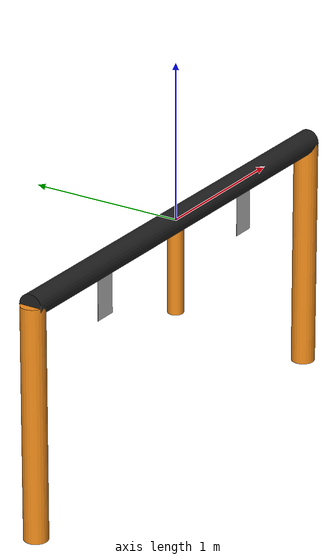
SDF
<?xml version='1.0'?>
<sdf version='1.5'>
  <model name='start_gate'>
    <pose> 0 0 0 0 0 0</pose>
    <self_collide> 0 </self_collide>
    <static>1</static>

    <link name='gate_top'>
      <pose> 0 0 0 0 1.5707 0</pose>
      <visual name='gate_top_vis'>
        <geometry>
          <cylinder>
            <radius>0.0762</radius>
            <length>3.05</length>
          </cylinder>
        </geometry>
        <material>
          <script>
            <uri>file://media/materials/scripts/gazebo.material</uri>
            <name>Gazebo/Black</name>
          </script>
        </material>
      </visual>
      <collision name='gate_top_collide'>
        <geometry>
          <cylinder>
            <radius>0.0762</radius>
            <length>3.05</length>
          </cylinder>
        </geometry>
      </collision>
    </link>

    <link name='gate_left'>
      <pose>-1.5 0 -0.75 0 0 0</pose>
      <visual name='gate_left_top'>
        <geometry>
          <cylinder>
            <radius>0.0762</radius>
            <length>1.5</length>
          </cylinder>
        </geometry>
        <material>
          <script>
            <uri>file://media/materials/scripts/gazebo.material</uri>
            <name>Gazebo/Orange</name>
          </script>
        </material>
      </visual>
      <collision name='gate_left_collide'>
        <geometry>
          <cylinder>
            <radius>0.0762</radius>
            <length>1.5</length>
          </cylinder>
        </geometry>
      </collision>
    </link>

    <link name='gate_right'>
      <pose>1.5 0 -0.75 0 0 0</pose>
      <visual name='gate_right_top'>
        <geometry>
          <cylinder>
            <radius>0.0762</radius>
            <length>1.5</length>
          </cylinder>
        </geometry>
        <material>
          <script>
            <uri>file://media/materials/scripts/gazebo.material</uri>
            <name>Gazebo/Orange</name>
          </script>
        </material>
      </visual>
      <collision name='gate_right_collide'>
        <geometry>
          <cylinder>
            <radius>0.0762</radius>
            <length>1.5</length>
          </cylinder>
        </geometry>
      </collision>
    </link>

    <link name='Bootlegger_red_flag_left'>
      <pose>0.762 0 -0.2 0 0 0</pose>
      <visual name='red_flag_left_vis'>
        <geometry>
          <box>
            <size>0.152 0.001 0.305</size>
          </box>
        </geometry>
        <material>
          <script>
            <uri>model://gate/materials/scripts</uri>
            <uri>model://gate/materials/textures</uri>
            <name>Bootlegger</name>
          </script>
        </material>
      </visual>
    </link>

    <link name='Gman_black_flag_right'>
      <pose>-0.762 0 -0.2 0 0 0</pose>
      <visual name='black_flag_right_vis'>
        <geometry>
          <box>
            <size>0.152 0.001 0.305</size>
          </box>
        </geometry>
        <material>
          <script>
            <uri>model://gate/materials/scripts</uri>
            <uri>model://gate/materials/textures</uri>
            <name>Gman</name>
          </script>
        </material>
      </visual>
    </link>

    <link name='Divider_red_flag_right'>
      <pose>0 0 -0.3 0 0 0</pose>
      <visual name='red_flag_right_vis'>
        <geometry>
          <cylinder>
            <radius>0.0508</radius>
            <length>0.61</length>
          </cylinder>
        </geometry>
        <material>
          <script>
            <uri>file://media/materials/scripts/gazebo.material</uri>
            <name>Gazebo/Orange</name>
          </script>
        </material>
      </visual>
    </link>

  </model>
</sdf>
